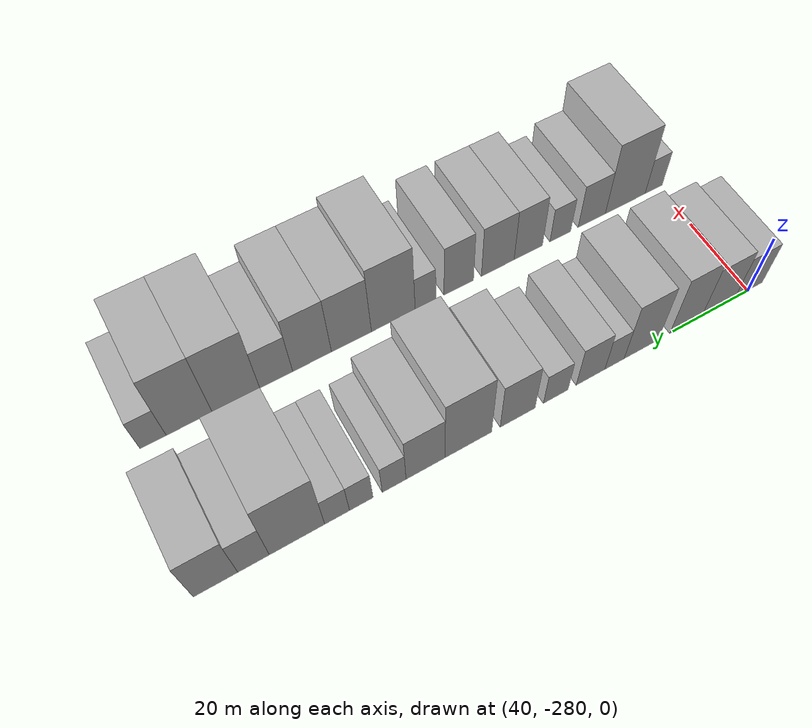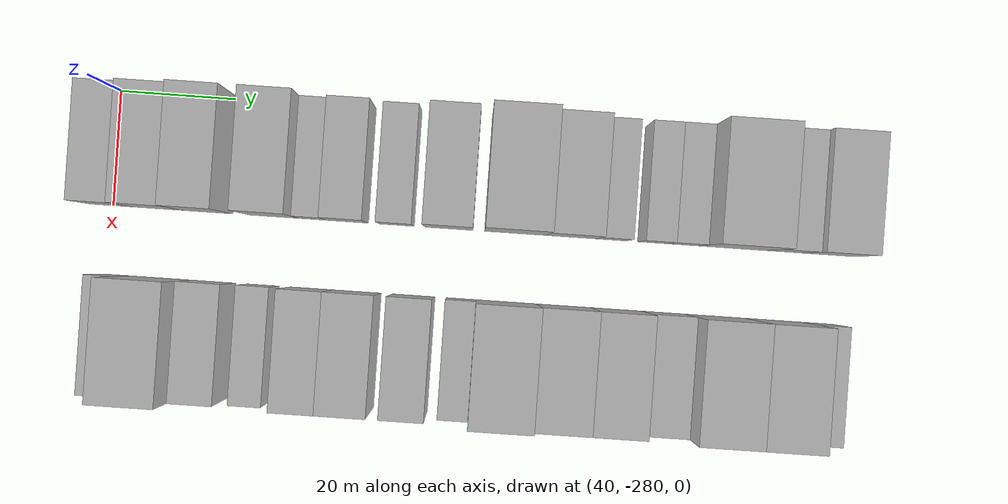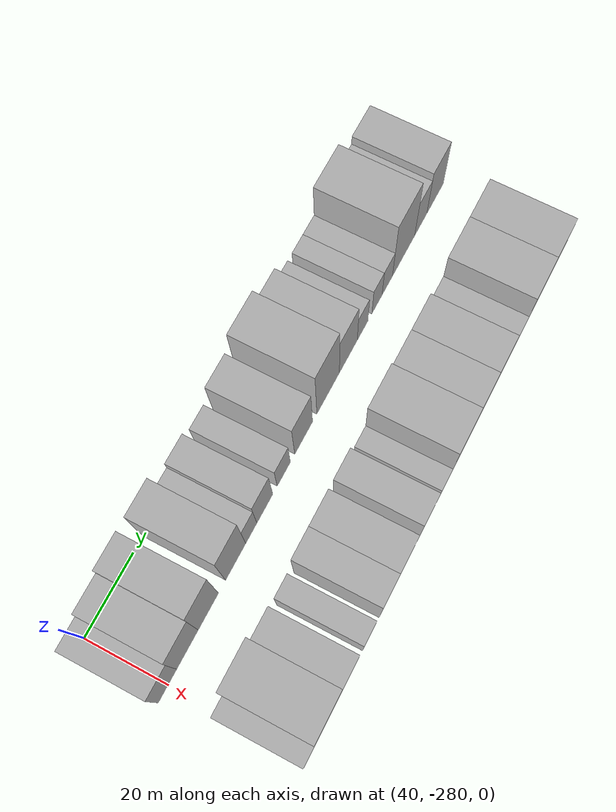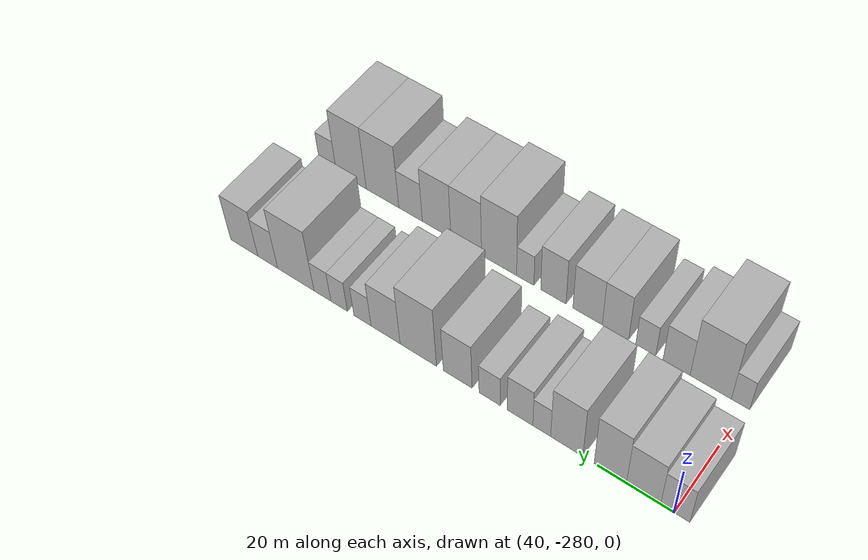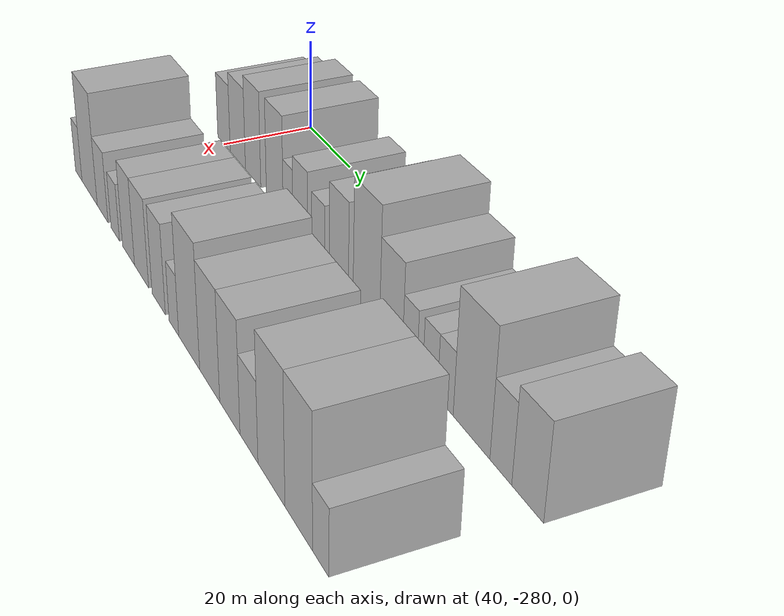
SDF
<sdf version="1.6">
 <world name="default">
  <model name="building_1">
   <static>1</static>
   <pose>50.0000 -280.2556 0 0.000000 0.000000 0.000000</pose>
   <link name="link">
    <pose>0 0 7.50 0 0 0</pose>
    <collision name="collision"><geometry><box><size>20.0000 7.4888 15.0000</size></box></geometry></collision>
    <visual name="visual">
     <cast_shadows>0</cast_shadows>
     <geometry><box><size>20.0000 7.4888 15.0000</size></box></geometry>
     <material>
      <script>
       <uri>model://HANNAS_wall/materials/scripts</uri>
       <uri>model://HANNAS_wall/materials/textures</uri>
       <name>vrc/HANNAS_wall</name>
      </script>
     </material>
    </visual>
   </link>
  </model>
  <model name="building_2">
   <static>1</static>
   <pose>50.0000 -272.0830 0 0.000000 0.000000 0.000000</pose>
   <link name="link">
    <pose>0 0 9.00 0 0 0</pose>
    <collision name="collision"><geometry><box><size>20.0000 8.8564 18.0000</size></box></geometry></collision>
    <visual name="visual">
     <cast_shadows>0</cast_shadows>
     <geometry><box><size>20.0000 8.8564 18.0000</size></box></geometry>
     <material>
      <script>
       <uri>model://HANNAS_wall/materials/scripts</uri>
       <uri>model://HANNAS_wall/materials/textures</uri>
       <name>vrc/HANNAS_wall</name>
      </script>
     </material>
    </visual>
   </link>
  </model>
  <model name="building_3">
   <static>1</static>
   <pose>50.0000 -263.3895 0 0.000000 0.000000 0.000000</pose>
   <link name="link">
    <pose>0 0 10.50 0 0 0</pose>
    <collision name="collision"><geometry><box><size>20.0000 8.5307 21.0000</size></box></geometry></collision>
    <visual name="visual">
     <cast_shadows>0</cast_shadows>
     <geometry><box><size>20.0000 8.5307 21.0000</size></box></geometry>
     <material>
      <script>
       <uri>model://HANNAS_wall/materials/scripts</uri>
       <uri>model://HANNAS_wall/materials/textures</uri>
       <name>vrc/HANNAS_wall</name>
      </script>
     </material>
    </visual>
   </link>
  </model>
  <model name="building_4">
   <static>1</static>
   <pose>50.0000 -251.7585 0 0.000000 0.000000 0.000000</pose>
   <link name="link">
    <pose>0 0 10.50 0 0 0</pose>
    <collision name="collision"><geometry><box><size>20.0000 8.7313 21.0000</size></box></geometry></collision>
    <visual name="visual">
     <cast_shadows>0</cast_shadows>
     <geometry><box><size>20.0000 8.7313 21.0000</size></box></geometry>
     <material>
      <script>
       <uri>model://HANNAS_wall/materials/scripts</uri>
       <uri>model://HANNAS_wall/materials/textures</uri>
       <name>vrc/HANNAS_wall</name>
      </script>
     </material>
    </visual>
   </link>
  </model>
  <model name="building_5">
   <static>1</static>
   <pose>50.0000 -244.9554 0 0.000000 0.000000 0.000000</pose>
   <link name="link">
    <pose>0 0 6.00 0 0 0</pose>
    <collision name="collision"><geometry><box><size>20.0000 4.8749 12.0000</size></box></geometry></collision>
    <visual name="visual">
     <cast_shadows>0</cast_shadows>
     <geometry><box><size>20.0000 4.8749 12.0000</size></box></geometry>
     <material>
      <script>
       <uri>model://HANNAS_wall/materials/scripts</uri>
       <uri>model://HANNAS_wall/materials/textures</uri>
       <name>vrc/HANNAS_wall</name>
      </script>
     </material>
    </visual>
   </link>
  </model>
  <model name="building_6">
   <static>1</static>
   <pose>50.0000 -238.9676 0 0.000000 0.000000 0.000000</pose>
   <link name="link">
    <pose>0 0 7.50 0 0 0</pose>
    <collision name="collision"><geometry><box><size>20.0000 7.1007 15.0000</size></box></geometry></collision>
    <visual name="visual">
     <cast_shadows>0</cast_shadows>
     <geometry><box><size>20.0000 7.1007 15.0000</size></box></geometry>
     <material>
      <script>
       <uri>model://HANNAS_wall/materials/scripts</uri>
       <uri>model://HANNAS_wall/materials/textures</uri>
       <name>vrc/HANNAS_wall</name>
      </script>
     </material>
    </visual>
   </link>
  </model>
  <model name="building_7">
   <static>1</static>
   <pose>50.0000 -230.4224 0 0.000000 0.000000 0.000000</pose>
   <link name="link">
    <pose>0 0 6.00 0 0 0</pose>
    <collision name="collision"><geometry><box><size>20.0000 5.9898 12.0000</size></box></geometry></collision>
    <visual name="visual">
     <cast_shadows>0</cast_shadows>
     <geometry><box><size>20.0000 5.9898 12.0000</size></box></geometry>
     <material>
      <script>
       <uri>model://HANNAS_wall/materials/scripts</uri>
       <uri>model://HANNAS_wall/materials/textures</uri>
       <name>vrc/HANNAS_wall</name>
      </script>
     </material>
    </visual>
   </link>
  </model>
  <model name="building_8">
   <static>1</static>
   <pose>50.0000 -221.2836 0 0.000000 0.000000 0.000000</pose>
   <link name="link">
    <pose>0 0 9.00 0 0 0</pose>
    <collision name="collision"><geometry><box><size>20.0000 8.2877 18.0000</size></box></geometry></collision>
    <visual name="visual">
     <cast_shadows>0</cast_shadows>
     <geometry><box><size>20.0000 8.2877 18.0000</size></box></geometry>
     <material>
      <script>
       <uri>model://HANNAS_wall/materials/scripts</uri>
       <uri>model://HANNAS_wall/materials/textures</uri>
       <name>vrc/HANNAS_wall</name>
      </script>
     </material>
    </visual>
   </link>
  </model>
  <model name="building_9">
   <static>1</static>
   <pose>50.0000 -209.7716 0 0.000000 0.000000 0.000000</pose>
   <link name="link">
    <pose>0 0 12.00 0 0 0</pose>
    <collision name="collision"><geometry><box><size>20.0000 10.7363 24.0000</size></box></geometry></collision>
    <visual name="visual">
     <cast_shadows>0</cast_shadows>
     <geometry><box><size>20.0000 10.7363 24.0000</size></box></geometry>
     <material>
      <script>
       <uri>model://HANNAS_wall/materials/scripts</uri>
       <uri>model://HANNAS_wall/materials/textures</uri>
       <name>vrc/HANNAS_wall</name>
      </script>
     </material>
    </visual>
   </link>
  </model>
  <model name="building_10">
   <static>1</static>
   <pose>50.0000 -200.0302 0 0.000000 0.000000 0.000000</pose>
   <link name="link">
    <pose>0 0 9.00 0 0 0</pose>
    <collision name="collision"><geometry><box><size>20.0000 8.7464 18.0000</size></box></geometry></collision>
    <visual name="visual">
     <cast_shadows>0</cast_shadows>
     <geometry><box><size>20.0000 8.7464 18.0000</size></box></geometry>
     <material>
      <script>
       <uri>model://HANNAS_wall/materials/scripts</uri>
       <uri>model://HANNAS_wall/materials/textures</uri>
       <name>vrc/HANNAS_wall</name>
      </script>
     </material>
    </visual>
   </link>
  </model>
  <model name="building_11">
   <static>1</static>
   <pose>50.0000 -193.0327 0 0.000000 0.000000 0.000000</pose>
   <link name="link">
    <pose>0 0 6.00 0 0 0</pose>
    <collision name="collision"><geometry><box><size>20.0000 5.2487 12.0000</size></box></geometry></collision>
    <visual name="visual">
     <cast_shadows>0</cast_shadows>
     <geometry><box><size>20.0000 5.2487 12.0000</size></box></geometry>
     <material>
      <script>
       <uri>model://HANNAS_wall/materials/scripts</uri>
       <uri>model://HANNAS_wall/materials/textures</uri>
       <name>vrc/HANNAS_wall</name>
      </script>
     </material>
    </visual>
   </link>
  </model>
  <model name="building_12">
   <static>1</static>
   <pose>50.0000 -185.8474 0 0.000000 0.000000 0.000000</pose>
   <link name="link">
    <pose>0 0 6.00 0 0 0</pose>
    <collision name="collision"><geometry><box><size>20.0000 5.1220 12.0000</size></box></geometry></collision>
    <visual name="visual">
     <cast_shadows>0</cast_shadows>
     <geometry><box><size>20.0000 5.1220 12.0000</size></box></geometry>
     <material>
      <script>
       <uri>model://HANNAS_wall/materials/scripts</uri>
       <uri>model://HANNAS_wall/materials/textures</uri>
       <name>vrc/HANNAS_wall</name>
      </script>
     </material>
    </visual>
   </link>
  </model>
  <model name="building_13">
   <static>1</static>
   <pose>50.0000 -180.6477 0 0.000000 0.000000 0.000000</pose>
   <link name="link">
    <pose>0 0 6.00 0 0 0</pose>
    <collision name="collision"><geometry><box><size>20.0000 5.2775 12.0000</size></box></geometry></collision>
    <visual name="visual">
     <cast_shadows>0</cast_shadows>
     <geometry><box><size>20.0000 5.2775 12.0000</size></box></geometry>
     <material>
      <script>
       <uri>model://HANNAS_wall/materials/scripts</uri>
       <uri>model://HANNAS_wall/materials/textures</uri>
       <name>vrc/HANNAS_wall</name>
      </script>
     </material>
    </visual>
   </link>
  </model>
  <model name="building_14">
   <static>1</static>
   <pose>50.0000 -172.2287 0 0.000000 0.000000 0.000000</pose>
   <link name="link">
    <pose>0 0 12.00 0 0 0</pose>
    <collision name="collision"><geometry><box><size>20.0000 11.5604 24.0000</size></box></geometry></collision>
    <visual name="visual">
     <cast_shadows>0</cast_shadows>
     <geometry><box><size>20.0000 11.5604 24.0000</size></box></geometry>
     <material>
      <script>
       <uri>model://HANNAS_wall/materials/scripts</uri>
       <uri>model://HANNAS_wall/materials/textures</uri>
       <name>vrc/HANNAS_wall</name>
      </script>
     </material>
    </visual>
   </link>
  </model>
  <model name="building_15">
   <static>1</static>
   <pose>50.0000 -163.2414 0 0.000000 0.000000 0.000000</pose>
   <link name="link">
    <pose>0 0 7.50 0 0 0</pose>
    <collision name="collision"><geometry><box><size>20.0000 6.4141 15.0000</size></box></geometry></collision>
    <visual name="visual">
     <cast_shadows>0</cast_shadows>
     <geometry><box><size>20.0000 6.4141 15.0000</size></box></geometry>
     <material>
      <script>
       <uri>model://HANNAS_wall/materials/scripts</uri>
       <uri>model://HANNAS_wall/materials/textures</uri>
       <name>vrc/HANNAS_wall</name>
      </script>
     </material>
    </visual>
   </link>
  </model>
  <model name="building_16">
   <static>1</static>
   <pose>50.0000 -155.5923 0 0.000000 0.000000 0.000000</pose>
   <link name="link">
    <pose>0 0 9.00 0 0 0</pose>
    <collision name="collision"><geometry><box><size>20.0000 8.8841 18.0000</size></box></geometry></collision>
    <visual name="visual">
     <cast_shadows>0</cast_shadows>
     <geometry><box><size>20.0000 8.8841 18.0000</size></box></geometry>
     <material>
      <script>
       <uri>model://HANNAS_wall/materials/scripts</uri>
       <uri>model://HANNAS_wall/materials/textures</uri>
       <name>vrc/HANNAS_wall</name>
      </script>
     </material>
    </visual>
   </link>
  </model>
  <model name="building_61">
   <static>1</static>
   <pose>82.0000 -278.5741 0 0.000000 0.000000 0.000000</pose>
   <link name="link">
    <pose>0 0 6.00 0 0 0</pose>
    <collision name="collision"><geometry><box><size>20.0000 4.8517 12.0000</size></box></geometry></collision>
    <visual name="visual">
     <cast_shadows>0</cast_shadows>
     <geometry><box><size>20.0000 4.8517 12.0000</size></box></geometry>
     <material>
      <script>
       <uri>model://HANNAS_wall/materials/scripts</uri>
       <uri>model://HANNAS_wall/materials/textures</uri>
       <name>vrc/HANNAS_wall</name>
      </script>
     </material>
    </visual>
   </link>
  </model>
  <model name="building_62">
   <static>1</static>
   <pose>82.0000 -270.6262 0 0.000000 0.000000 0.000000</pose>
   <link name="link">
    <pose>0 0 12.00 0 0 0</pose>
    <collision name="collision"><geometry><box><size>20.0000 11.0442 24.0000</size></box></geometry></collision>
    <visual name="visual">
     <cast_shadows>0</cast_shadows>
     <geometry><box><size>20.0000 11.0442 24.0000</size></box></geometry>
     <material>
      <script>
       <uri>model://HANNAS_wall/materials/scripts</uri>
       <uri>model://HANNAS_wall/materials/textures</uri>
       <name>vrc/HANNAS_wall</name>
      </script>
     </material>
    </visual>
   </link>
  </model>
  <model name="building_63">
   <static>1</static>
   <pose>82.0000 -261.4156 0 0.000000 0.000000 0.000000</pose>
   <link name="link">
    <pose>0 0 7.50 0 0 0</pose>
    <collision name="collision"><geometry><box><size>20.0000 7.3770 15.0000</size></box></geometry></collision>
    <visual name="visual">
     <cast_shadows>0</cast_shadows>
     <geometry><box><size>20.0000 7.3770 15.0000</size></box></geometry>
     <material>
      <script>
       <uri>model://HANNAS_wall/materials/scripts</uri>
       <uri>model://HANNAS_wall/materials/textures</uri>
       <name>vrc/HANNAS_wall</name>
      </script>
     </material>
    </visual>
   </link>
  </model>
  <model name="building_64">
   <static>1</static>
   <pose>82.0000 -252.9593 0 0.000000 0.000000 0.000000</pose>
   <link name="link">
    <pose>0 0 6.00 0 0 0</pose>
    <collision name="collision"><geometry><box><size>20.0000 5.5355 12.0000</size></box></geometry></collision>
    <visual name="visual">
     <cast_shadows>0</cast_shadows>
     <geometry><box><size>20.0000 5.5355 12.0000</size></box></geometry>
     <material>
      <script>
       <uri>model://HANNAS_wall/materials/scripts</uri>
       <uri>model://HANNAS_wall/materials/textures</uri>
       <name>vrc/HANNAS_wall</name>
      </script>
     </material>
    </visual>
   </link>
  </model>
  <model name="building_65">
   <static>1</static>
   <pose>82.0000 -244.4797 0 0.000000 0.000000 0.000000</pose>
   <link name="link">
    <pose>0 0 9.00 0 0 0</pose>
    <collision name="collision"><geometry><box><size>20.0000 7.4238 18.0000</size></box></geometry></collision>
    <visual name="visual">
     <cast_shadows>0</cast_shadows>
     <geometry><box><size>20.0000 7.4238 18.0000</size></box></geometry>
     <material>
      <script>
       <uri>model://HANNAS_wall/materials/scripts</uri>
       <uri>model://HANNAS_wall/materials/textures</uri>
       <name>vrc/HANNAS_wall</name>
      </script>
     </material>
    </visual>
   </link>
  </model>
  <model name="building_66">
   <static>1</static>
   <pose>82.0000 -236.5611 0 0.000000 0.000000 0.000000</pose>
   <link name="link">
    <pose>0 0 9.00 0 0 0</pose>
    <collision name="collision"><geometry><box><size>20.0000 8.4134 18.0000</size></box></geometry></collision>
    <visual name="visual">
     <cast_shadows>0</cast_shadows>
     <geometry><box><size>20.0000 8.4134 18.0000</size></box></geometry>
     <material>
      <script>
       <uri>model://HANNAS_wall/materials/scripts</uri>
       <uri>model://HANNAS_wall/materials/textures</uri>
       <name>vrc/HANNAS_wall</name>
      </script>
     </material>
    </visual>
   </link>
  </model>
  <model name="building_67">
   <static>1</static>
   <pose>82.0000 -226.6559 0 0.000000 0.000000 0.000000</pose>
   <link name="link">
    <pose>0 0 9.00 0 0 0</pose>
    <collision name="collision"><geometry><box><size>20.0000 7.3971 18.0000</size></box></geometry></collision>
    <visual name="visual">
     <cast_shadows>0</cast_shadows>
     <geometry><box><size>20.0000 7.3971 18.0000</size></box></geometry>
     <material>
      <script>
       <uri>model://HANNAS_wall/materials/scripts</uri>
       <uri>model://HANNAS_wall/materials/textures</uri>
       <name>vrc/HANNAS_wall</name>
      </script>
     </material>
    </visual>
   </link>
  </model>
  <model name="building_68">
   <static>1</static>
   <pose>82.0000 -218.3992 0 0.000000 0.000000 0.000000</pose>
   <link name="link">
    <pose>0 0 6.00 0 0 0</pose>
    <collision name="collision"><geometry><box><size>20.0000 5.1164 12.0000</size></box></geometry></collision>
    <visual name="visual">
     <cast_shadows>0</cast_shadows>
     <geometry><box><size>20.0000 5.1164 12.0000</size></box></geometry>
     <material>
      <script>
       <uri>model://HANNAS_wall/materials/scripts</uri>
       <uri>model://HANNAS_wall/materials/textures</uri>
       <name>vrc/HANNAS_wall</name>
      </script>
     </material>
    </visual>
   </link>
  </model>
  <model name="building_69">
   <static>1</static>
   <pose>82.0000 -210.5637 0 0.000000 0.000000 0.000000</pose>
   <link name="link">
    <pose>0 0 12.00 0 0 0</pose>
    <collision name="collision"><geometry><box><size>20.0000 10.5545 24.0000</size></box></geometry></collision>
    <visual name="visual">
     <cast_shadows>0</cast_shadows>
     <geometry><box><size>20.0000 10.5545 24.0000</size></box></geometry>
     <material>
      <script>
       <uri>model://HANNAS_wall/materials/scripts</uri>
       <uri>model://HANNAS_wall/materials/textures</uri>
       <name>vrc/HANNAS_wall</name>
      </script>
     </material>
    </visual>
   </link>
  </model>
  <model name="building_70">
   <static>1</static>
   <pose>82.0000 -200.5748 0 0.000000 0.000000 0.000000</pose>
   <link name="link">
    <pose>0 0 10.50 0 0 0</pose>
    <collision name="collision"><geometry><box><size>20.0000 9.4233 21.0000</size></box></geometry></collision>
    <visual name="visual">
     <cast_shadows>0</cast_shadows>
     <geometry><box><size>20.0000 9.4233 21.0000</size></box></geometry>
     <material>
      <script>
       <uri>model://HANNAS_wall/materials/scripts</uri>
       <uri>model://HANNAS_wall/materials/textures</uri>
       <name>vrc/HANNAS_wall</name>
      </script>
     </material>
    </visual>
   </link>
  </model>
  <model name="building_71">
   <static>1</static>
   <pose>82.0000 -191.3926 0 0.000000 0.000000 0.000000</pose>
   <link name="link">
    <pose>0 0 10.50 0 0 0</pose>
    <collision name="collision"><geometry><box><size>20.0000 8.9411 21.0000</size></box></geometry></collision>
    <visual name="visual">
     <cast_shadows>0</cast_shadows>
     <geometry><box><size>20.0000 8.9411 21.0000</size></box></geometry>
     <material>
      <script>
       <uri>model://HANNAS_wall/materials/scripts</uri>
       <uri>model://HANNAS_wall/materials/textures</uri>
       <name>vrc/HANNAS_wall</name>
      </script>
     </material>
    </visual>
   </link>
  </model>
  <model name="building_72">
   <static>1</static>
   <pose>82.0000 -183.1935 0 0.000000 0.000000 0.000000</pose>
   <link name="link">
    <pose>0 0 7.50 0 0 0</pose>
    <collision name="collision"><geometry><box><size>20.0000 7.4571 15.0000</size></box></geometry></collision>
    <visual name="visual">
     <cast_shadows>0</cast_shadows>
     <geometry><box><size>20.0000 7.4571 15.0000</size></box></geometry>
     <material>
      <script>
       <uri>model://HANNAS_wall/materials/scripts</uri>
       <uri>model://HANNAS_wall/materials/textures</uri>
       <name>vrc/HANNAS_wall</name>
      </script>
     </material>
    </visual>
   </link>
  </model>
  <model name="building_73">
   <static>1</static>
   <pose>82.0000 -174.2096 0 0.000000 0.000000 0.000000</pose>
   <link name="link">
    <pose>0 0 12.00 0 0 0</pose>
    <collision name="collision"><geometry><box><size>20.0000 10.5107 24.0000</size></box></geometry></collision>
    <visual name="visual">
     <cast_shadows>0</cast_shadows>
     <geometry><box><size>20.0000 10.5107 24.0000</size></box></geometry>
     <material>
      <script>
       <uri>model://HANNAS_wall/materials/scripts</uri>
       <uri>model://HANNAS_wall/materials/textures</uri>
       <name>vrc/HANNAS_wall</name>
      </script>
     </material>
    </visual>
   </link>
  </model>
  <model name="building_74">
   <static>1</static>
   <pose>82.0000 -164.0090 0 0.000000 0.000000 0.000000</pose>
   <link name="link">
    <pose>0 0 12.00 0 0 0</pose>
    <collision name="collision"><geometry><box><size>20.0000 9.8905 24.0000</size></box></geometry></collision>
    <visual name="visual">
     <cast_shadows>0</cast_shadows>
     <geometry><box><size>20.0000 9.8905 24.0000</size></box></geometry>
     <material>
      <script>
       <uri>model://HANNAS_wall/materials/scripts</uri>
       <uri>model://HANNAS_wall/materials/textures</uri>
       <name>vrc/HANNAS_wall</name>
      </script>
     </material>
    </visual>
   </link>
  </model>
  <model name="building_75">
   <static>1</static>
   <pose>82.0000 -156.2939 0 0.000000 0.000000 0.000000</pose>
   <link name="link">
    <pose>0 0 6.00 0 0 0</pose>
    <collision name="collision"><geometry><box><size>20.0000 5.5397 12.0000</size></box></geometry></collision>
    <visual name="visual">
     <cast_shadows>0</cast_shadows>
     <geometry><box><size>20.0000 5.5397 12.0000</size></box></geometry>
     <material>
      <script>
       <uri>model://HANNAS_wall/materials/scripts</uri>
       <uri>model://HANNAS_wall/materials/textures</uri>
       <name>vrc/HANNAS_wall</name>
      </script>
     </material>
    </visual>
   </link>
  </model>
 </world>
</sdf>
